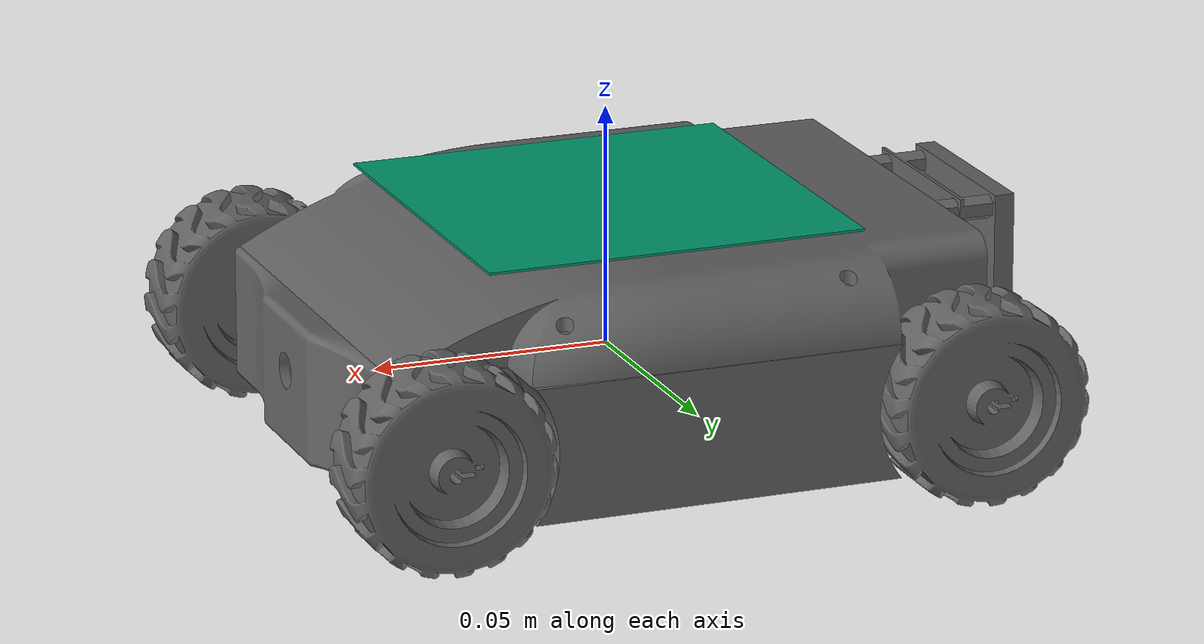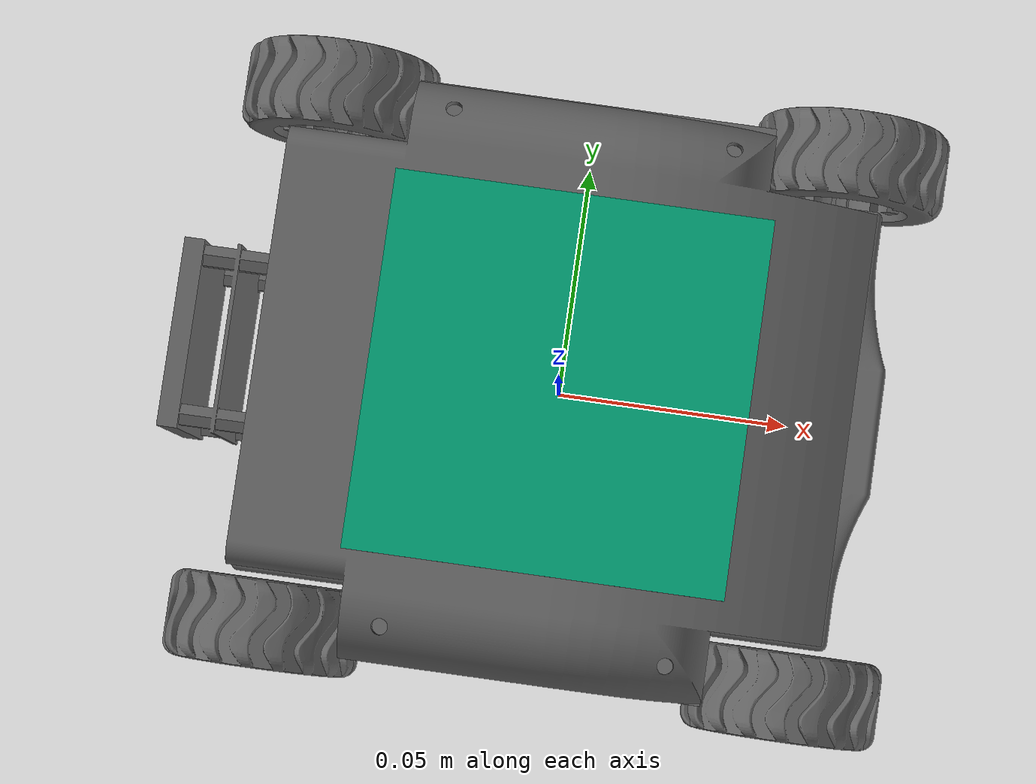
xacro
<?xml version="1.0"?>

<robot name="robomax" xmlns:xacro="http://ros.org/wiki/xacro">

	<xacro:property name="PI" value="3.1415926535897931" />
	<xacro:include filename="$(find robomax_description)/description/macros.xacro" />
	<xacro:include filename="$(find robomax_description)/description/robomax.gazebo" />
	<link name="base_footprint" />

	<wheel name="back_left" x="0.05675" y="0.0495" z="0.0" />
	<wheel name="back_right" x="0.05675" y="-0.0675" z="0.0" />
	<wheel name="front_left" x="-0.05675" y="0.0495" z="0.0" />
	<wheel name="front_right" x="-0.05675" y="-0.0675" z="0.0" />

	<link name="base_link">
		<visual>
			<origin rpy="0 0 ${PI/2}" xyz="0.0 0 -0.014" />
			<material name="White">
				<color rgba="${100/255} ${100/255} ${100/255} 1.0" />
			</material>
			<geometry>
				<mesh filename="package://robomax_description/description/meshes/robomax_body.stl" scale="0.001 0.001 0.001" />
			</geometry>
		</visual>
		<collision>
			<geometry>
				<mesh filename="package://robomax_description/description/meshes/robomax_body.stl" scale="0.001 0.001 0.001" />
			</geometry>
			<origin rpy="0 0 ${PI/2}" xyz="0.0 0 -0.014" />
			<material name="White">
				<color rgba="${30/255} ${30/255} ${30/255} 1.0" />
			</material>
		</collision>
		<inertial>
			<mass value="0.5" />
			<box_inertia m="0.5" x="0.128" y="0.95" z="0.028" />
		</inertial>
	</link>

	<link name="top_lid_link">
		<visual>
			<origin rpy="0 0 ${PI/2}" xyz="0.0 0 0.014" />
			<material name="White">
				<color rgba="${100/255} ${100/255} ${100/255} 1.0" />
			</material>
			<geometry>
				<mesh filename="package://robomax_description/description/meshes/robomax_lid.stl" scale="0.001 0.001 0.001" />
			</geometry>
		</visual>
		<collision>
			<geometry>
				<mesh filename="package://robomax_description/description/meshes/robomax_lid.stl" scale="0.001 0.001 0.001" />
			</geometry>
			<origin rpy="0 0 ${PI/2}" xyz="0.0 0 0.014" />
			<material name="White">
				<color rgba="${30/255} ${30/255} ${30/255} 1.0" />
			</material>
		</collision>
		<inertial>
			<mass value="0.5" />
			<box_inertia m="0.5" x="0.128" y="0.95" z="0.15" />
		</inertial>
	</link>

	<link name="epm_link">
		<visual>
			<origin rpy="0 ${PI/2} 0" xyz="-0.082 0.0 0.0082" />
			<material name="White">
				<color rgba="${100/255} ${100/255} ${100/255} 1.0" />
			</material>
			<geometry>
				<mesh filename="package://robomax_description/description/meshes/epm.stl" scale="0.001 0.001 0.001" />
			</geometry>
		</visual>
		<collision>
			<geometry>
				<mesh filename="package://robomax_description/description/meshes/epm.stl" scale="0.001 0.001 0.001" />
			</geometry>
			<origin rpy="0 ${PI/2} 0" xyz="-0.082 0.0 0.0082" />
			<material name="White">
				<color rgba="${30/255} ${30/255} ${30/255} 1.0" />
			</material>
		</collision>
		<inertial>
			<mass value="0.05" />
			<box_inertia m="0.05" x="0.05" y="0.05" z="0.02" />
		</inertial>
	</link>

	<link name="base_ir_front" />
	<link name="camera_link" />

	<link name="marker">
		<inertial>
			<origin xyz="0 0 0" rpy="0 0 0" />
			<mass value="0.001" />
			<box_inertia m="0.01" x="0.08" y="0.08" z="0.0005" />
		</inertial>

		<visual>
			<origin xyz="0 0 0" rpy="0 0 0" />
			<geometry>
				<box size="0.08 0.08 0.0005" />
			</geometry>
		</visual>

		<collision>
			<origin xyz="0 0 0" rpy="0 0 0" />
			<geometry>
				<box size="0.08 0.08 0.0005" />
			</geometry>
		</collision>
	</link>

	<joint name="marker_link_joint" type="fixed">
		<origin xyz="0 0 0.031" rpy="0 0 0" />
		<parent link="base_link" />
		<child link="marker" />
	</joint>

	<joint name="epm_joint_base_link" type="fixed">
		<origin xyz="0 0.0 0" rpy="0 0 0" />
		<parent link="base_link" />
		<child link="epm_link" />
	</joint>

	<joint name="top_lid_joint_base_link" type="fixed">
		<origin xyz="0 0 0" rpy="0 0 0" />
		<parent link="base_link" />
		<child link="top_lid_link" />
	</joint>

	<joint name="base_footprint_base_link_joint" type="fixed">
		<origin xyz="0 0 0.00" rpy="0 0 0" />
		<parent link="base_footprint" />
		<child link="base_link" />
	</joint>

	<joint name="ir_front_joint" type="fixed">
		<origin rpy="0 0 0" xyz="0.09 0 0" />
		<parent link="base_link" />
		<child link="base_ir_front" />
	</joint>

	<joint name="camera_joint" type="fixed">
		<origin rpy="0 0 0" xyz="0.09 0 0" />
		<parent link="base_link" />
		<child link="camera_link" />
	</joint>

</robot>

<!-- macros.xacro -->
<robot>
     <macro name="cylinder_inertia" params="m r h">
        <inertia  ixx="${m*(3*r*r+h*h)/12}" ixy = "0" ixz = "0"
                  iyy="${m*(3*r*r+h*h)/12}" iyz = "0"
                  izz="${m*r*r/2}" />
      </macro>

      <macro name="box_inertia" params="m x y z">
        <inertia  ixx="${m*(y*y+z*z)/12}" ixy = "0" ixz = "0"
                  iyy="${m*(x*x+z*z)/12}" iyz = "0"
                  izz="${m*(x*x+z*z)/12}" />
      </macro>

      <macro name="sphere_inertia" params="m r">
        <inertia  ixx="${2*m*r*r/5}" ixy = "0" ixz = "0"
                  iyy="${2*m*r*r/5}" iyz = "0"
                  izz="${2*m*r*r/5}" />
      </macro>

      <macro name="wheel" params="name x y z">
        <link name="${name}_wheel">
          <visual>
            <origin rpy="0 ${PI/2} 0" xyz="0.0 0.0 0.0"/>
                <material name="White">
                  <color rgba="${100/255} ${100/255} ${100/255} 1.0"/>
                </material>
            <geometry>
              <mesh filename="package://robomax_description/description/meshes/wheels.stl" scale="0.001 0.001 0.001"/>
            </geometry>
          </visual>
        <collision>
            <geometry>
              <mesh filename="package://robomax_description/description/meshes/wheels.stl" scale="0.001 0.001 0.001"/>
            </geometry>
            <origin rpy="0 ${PI/2} 0" xyz="0.0 0.0 0.0"/>
            <material name="White">
                  <color rgba="${30/255} ${30/255} ${30/255} 1.0"/>
              </material>
        </collision>
          <inertial>
              <mass value="0.4"/>
              <box_inertia m="0.4" x="0.05" y="0.03" z="0.05"/>
          </inertial>
      </link>

        <joint name="${name}_wheel_joint" type="continuous">
          <parent link="base_link"/>
          <child link="${name}_wheel"/>
          <origin xyz="${x} ${y} ${z}" rpy="0 0 ${PI/2}" />
          <limit effort="100" velocity="1.2"/>
          <joint_properties damping="0.25" friction="1.0"/>
        </joint>

        <transmission name="${name}_joint_trans" type="SimpleTransmission">
          <actuator name="${name}_joint_motor"/>
          <joint name="${name}_wheel_joint"/>
          <mechanicalReduction>1</mechanicalReduction>
          <motorTorqueConstant>1</motorTorqueConstant>
        </transmission>

      </macro>

</robot>
